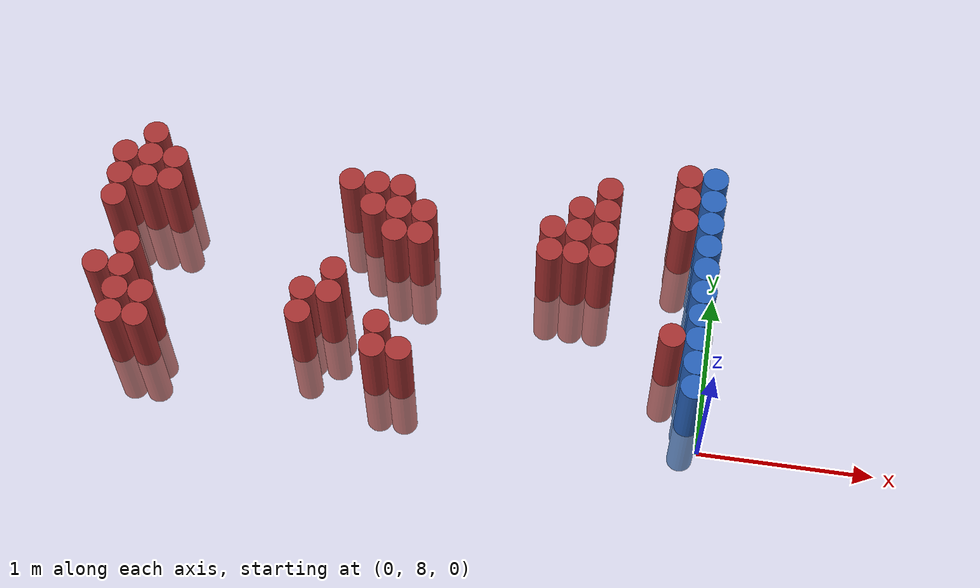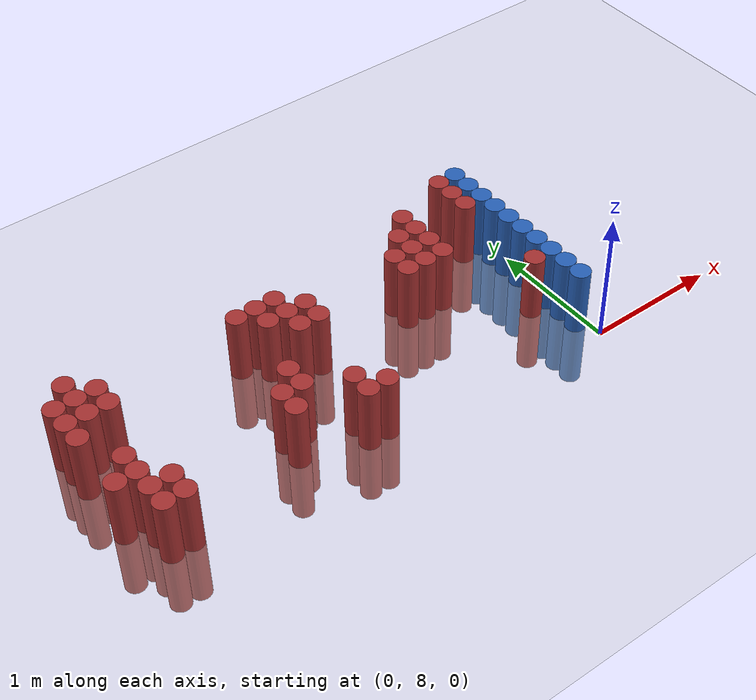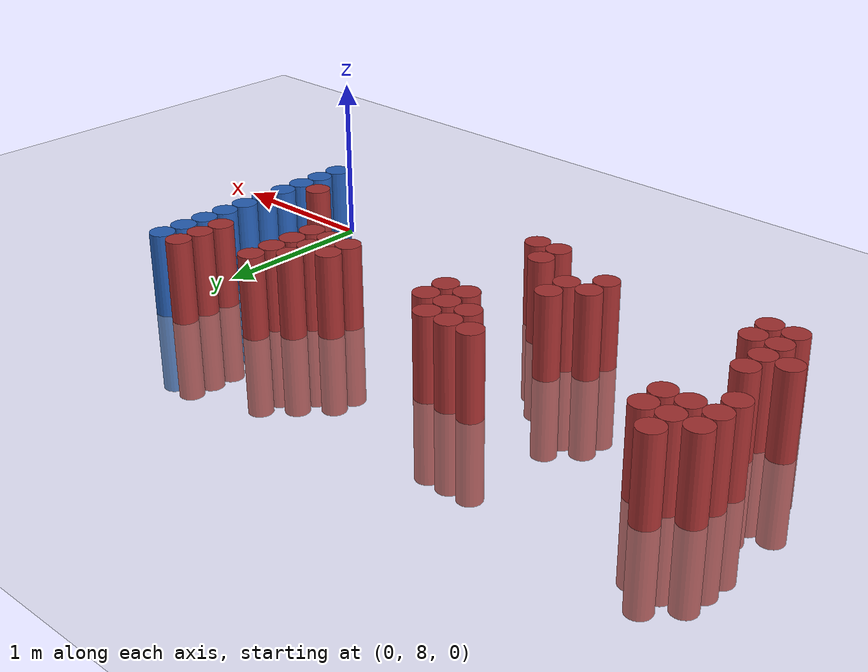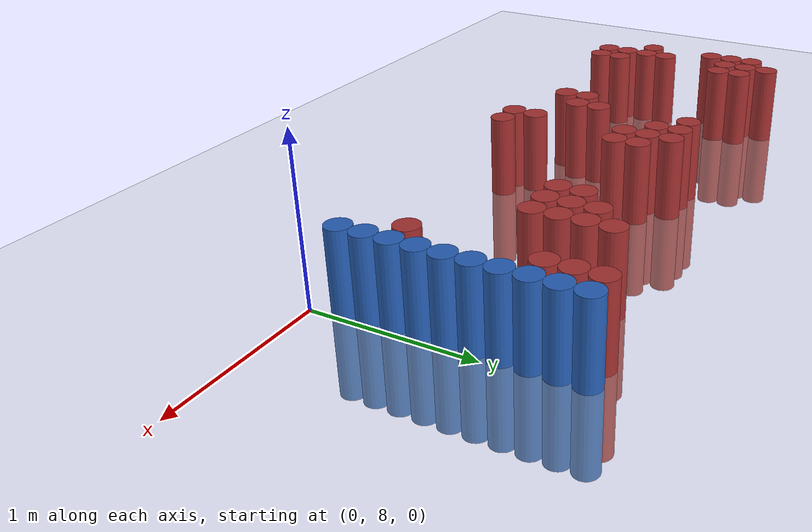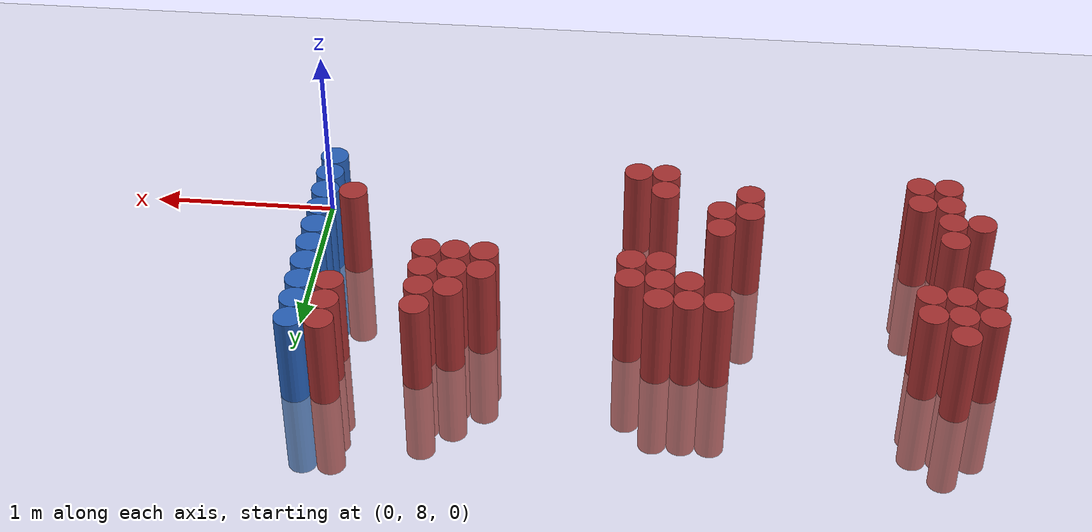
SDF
<sdf version="1.6">
 <world name="default">
  <model name="ground_plane">
   <static>1</static>
   <link name="link">
    <collision name="collision">
     <geometry><plane><normal>0 0 1</normal><size>100 100</size></plane></geometry>
     <surface><friction><ode><mu>100</mu><mu2>50</mu2></ode></friction></surface>
    </collision>
    <visual name="visual">
     <cast_shadows>0</cast_shadows>
     <geometry><plane><normal>0 0 1</normal><size>100 100</size></plane></geometry>
     <material>
      <script><uri>file://media/materials/scripts/gazebo.material</uri><name>Gazebo/Grey</name></script>
     </material>
    </visual>
   </link>
  </model>
  <model name="unit_cylinder_170">
   <static>1</static>
   <pose>-3.525000 8.475000 0.000000 0.000000 0.000000 0.000000</pose>
   <link name="link">
    <inertial>
     <mass>1</mass>
     <inertia><ixx>0.145833</ixx><ixy>0</ixy><ixz>0</ixz><iyy>0.145833</iyy><iyz>0</iyz><izz>0.125</izz></inertia>
    </inertial>
    <collision name="collision">
     <geometry><cylinder><radius>0.075000</radius><length>1</length></cylinder></geometry>
    </collision>
    <visual name="visual">
     <geometry><cylinder><radius>0.075000</radius><length>1</length></cylinder></geometry>
     <material>
      <ambient>0.648000 0.192000 0.192000 1</ambient>
      <diffuse>0.648000 0.192000 0.192000 1</diffuse>
     </material>
     <material>
      <script><name>Gazebo/Grey</name><uri>file://media/materials/scripts/gazebo.material</uri></script>
     </material>
    </visual>
   </link>
  </model>
  <model name="unit_cylinder_171">
   <static>1</static>
   <pose>-3.525000 8.925000 0.000000 0.000000 0.000000 0.000000</pose>
   <link name="link">
    <inertial>
     <mass>1</mass>
     <inertia><ixx>0.145833</ixx><ixy>0</ixy><ixz>0</ixz><iyy>0.145833</iyy><iyz>0</iyz><izz>0.125</izz></inertia>
    </inertial>
    <collision name="collision">
     <geometry><cylinder><radius>0.075000</radius><length>1</length></cylinder></geometry>
    </collision>
    <visual name="visual">
     <geometry><cylinder><radius>0.075000</radius><length>1</length></cylinder></geometry>
     <material>
      <ambient>0.648000 0.192000 0.192000 1</ambient>
      <diffuse>0.648000 0.192000 0.192000 1</diffuse>
     </material>
     <material>
      <script><name>Gazebo/Grey</name><uri>file://media/materials/scripts/gazebo.material</uri></script>
     </material>
    </visual>
   </link>
  </model>
  <model name="unit_cylinder_172">
   <static>1</static>
   <pose>-3.525000 9.075000 0.000000 0.000000 0.000000 0.000000</pose>
   <link name="link">
    <inertial>
     <mass>1</mass>
     <inertia><ixx>0.145833</ixx><ixy>0</ixy><ixz>0</ixz><iyy>0.145833</iyy><iyz>0</iyz><izz>0.125</izz></inertia>
    </inertial>
    <collision name="collision">
     <geometry><cylinder><radius>0.075000</radius><length>1</length></cylinder></geometry>
    </collision>
    <visual name="visual">
     <geometry><cylinder><radius>0.075000</radius><length>1</length></cylinder></geometry>
     <material>
      <ambient>0.648000 0.192000 0.192000 1</ambient>
      <diffuse>0.648000 0.192000 0.192000 1</diffuse>
     </material>
     <material>
      <script><name>Gazebo/Grey</name><uri>file://media/materials/scripts/gazebo.material</uri></script>
     </material>
    </visual>
   </link>
  </model>
  <model name="unit_cylinder_173">
   <static>1</static>
   <pose>-3.525000 9.225000 0.000000 0.000000 0.000000 0.000000</pose>
   <link name="link">
    <inertial>
     <mass>1</mass>
     <inertia><ixx>0.145833</ixx><ixy>0</ixy><ixz>0</ixz><iyy>0.145833</iyy><iyz>0</iyz><izz>0.125</izz></inertia>
    </inertial>
    <collision name="collision">
     <geometry><cylinder><radius>0.075000</radius><length>1</length></cylinder></geometry>
    </collision>
    <visual name="visual">
     <geometry><cylinder><radius>0.075000</radius><length>1</length></cylinder></geometry>
     <material>
      <ambient>0.648000 0.192000 0.192000 1</ambient>
      <diffuse>0.648000 0.192000 0.192000 1</diffuse>
     </material>
     <material>
      <script><name>Gazebo/Grey</name><uri>file://media/materials/scripts/gazebo.material</uri></script>
     </material>
    </visual>
   </link>
  </model>
  <model name="unit_cylinder_177">
   <static>1</static>
   <pose>-3.375000 8.175000 0.000000 0.000000 0.000000 0.000000</pose>
   <link name="link">
    <inertial>
     <mass>1</mass>
     <inertia><ixx>0.145833</ixx><ixy>0</ixy><ixz>0</ixz><iyy>0.145833</iyy><iyz>0</iyz><izz>0.125</izz></inertia>
    </inertial>
    <collision name="collision">
     <geometry><cylinder><radius>0.075000</radius><length>1</length></cylinder></geometry>
    </collision>
    <visual name="visual">
     <geometry><cylinder><radius>0.075000</radius><length>1</length></cylinder></geometry>
     <material>
      <ambient>0.648000 0.192000 0.192000 1</ambient>
      <diffuse>0.648000 0.192000 0.192000 1</diffuse>
     </material>
     <material>
      <script><name>Gazebo/Grey</name><uri>file://media/materials/scripts/gazebo.material</uri></script>
     </material>
    </visual>
   </link>
  </model>
  <model name="unit_cylinder_178">
   <static>1</static>
   <pose>-3.375000 8.325000 0.000000 0.000000 0.000000 0.000000</pose>
   <link name="link">
    <inertial>
     <mass>1</mass>
     <inertia><ixx>0.145833</ixx><ixy>0</ixy><ixz>0</ixz><iyy>0.145833</iyy><iyz>0</iyz><izz>0.125</izz></inertia>
    </inertial>
    <collision name="collision">
     <geometry><cylinder><radius>0.075000</radius><length>1</length></cylinder></geometry>
    </collision>
    <visual name="visual">
     <geometry><cylinder><radius>0.075000</radius><length>1</length></cylinder></geometry>
     <material>
      <ambient>0.648000 0.192000 0.192000 1</ambient>
      <diffuse>0.648000 0.192000 0.192000 1</diffuse>
     </material>
     <material>
      <script><name>Gazebo/Grey</name><uri>file://media/materials/scripts/gazebo.material</uri></script>
     </material>
    </visual>
   </link>
  </model>
  <model name="unit_cylinder_179">
   <static>1</static>
   <pose>-3.375000 8.475000 0.000000 0.000000 0.000000 0.000000</pose>
   <link name="link">
    <inertial>
     <mass>1</mass>
     <inertia><ixx>0.145833</ixx><ixy>0</ixy><ixz>0</ixz><iyy>0.145833</iyy><iyz>0</iyz><izz>0.125</izz></inertia>
    </inertial>
    <collision name="collision">
     <geometry><cylinder><radius>0.075000</radius><length>1</length></cylinder></geometry>
    </collision>
    <visual name="visual">
     <geometry><cylinder><radius>0.075000</radius><length>1</length></cylinder></geometry>
     <material>
      <ambient>0.648000 0.192000 0.192000 1</ambient>
      <diffuse>0.648000 0.192000 0.192000 1</diffuse>
     </material>
     <material>
      <script><name>Gazebo/Grey</name><uri>file://media/materials/scripts/gazebo.material</uri></script>
     </material>
    </visual>
   </link>
  </model>
  <model name="unit_cylinder_180">
   <static>1</static>
   <pose>-3.375000 8.625000 0.000000 0.000000 0.000000 0.000000</pose>
   <link name="link">
    <inertial>
     <mass>1</mass>
     <inertia><ixx>0.145833</ixx><ixy>0</ixy><ixz>0</ixz><iyy>0.145833</iyy><iyz>0</iyz><izz>0.125</izz></inertia>
    </inertial>
    <collision name="collision">
     <geometry><cylinder><radius>0.075000</radius><length>1</length></cylinder></geometry>
    </collision>
    <visual name="visual">
     <geometry><cylinder><radius>0.075000</radius><length>1</length></cylinder></geometry>
     <material>
      <ambient>0.648000 0.192000 0.192000 1</ambient>
      <diffuse>0.648000 0.192000 0.192000 1</diffuse>
     </material>
     <material>
      <script><name>Gazebo/Grey</name><uri>file://media/materials/scripts/gazebo.material</uri></script>
     </material>
    </visual>
   </link>
  </model>
  <model name="unit_cylinder_181">
   <static>1</static>
   <pose>-3.375000 9.075000 0.000000 0.000000 0.000000 0.000000</pose>
   <link name="link">
    <inertial>
     <mass>1</mass>
     <inertia><ixx>0.145833</ixx><ixy>0</ixy><ixz>0</ixz><iyy>0.145833</iyy><iyz>0</iyz><izz>0.125</izz></inertia>
    </inertial>
    <collision name="collision">
     <geometry><cylinder><radius>0.075000</radius><length>1</length></cylinder></geometry>
    </collision>
    <visual name="visual">
     <geometry><cylinder><radius>0.075000</radius><length>1</length></cylinder></geometry>
     <material>
      <ambient>0.648000 0.192000 0.192000 1</ambient>
      <diffuse>0.648000 0.192000 0.192000 1</diffuse>
     </material>
     <material>
      <script><name>Gazebo/Grey</name><uri>file://media/materials/scripts/gazebo.material</uri></script>
     </material>
    </visual>
   </link>
  </model>
  <model name="unit_cylinder_182">
   <static>1</static>
   <pose>-3.375000 9.225000 0.000000 0.000000 0.000000 0.000000</pose>
   <link name="link">
    <inertial>
     <mass>1</mass>
     <inertia><ixx>0.145833</ixx><ixy>0</ixy><ixz>0</ixz><iyy>0.145833</iyy><iyz>0</iyz><izz>0.125</izz></inertia>
    </inertial>
    <collision name="collision">
     <geometry><cylinder><radius>0.075000</radius><length>1</length></cylinder></geometry>
    </collision>
    <visual name="visual">
     <geometry><cylinder><radius>0.075000</radius><length>1</length></cylinder></geometry>
     <material>
      <ambient>0.648000 0.192000 0.192000 1</ambient>
      <diffuse>0.648000 0.192000 0.192000 1</diffuse>
     </material>
     <material>
      <script><name>Gazebo/Grey</name><uri>file://media/materials/scripts/gazebo.material</uri></script>
     </material>
    </visual>
   </link>
  </model>
  <model name="unit_cylinder_183">
   <static>1</static>
   <pose>-3.375000 9.375000 0.000000 0.000000 0.000000 0.000000</pose>
   <link name="link">
    <inertial>
     <mass>1</mass>
     <inertia><ixx>0.145833</ixx><ixy>0</ixy><ixz>0</ixz><iyy>0.145833</iyy><iyz>0</iyz><izz>0.125</izz></inertia>
    </inertial>
    <collision name="collision">
     <geometry><cylinder><radius>0.075000</radius><length>1</length></cylinder></geometry>
    </collision>
    <visual name="visual">
     <geometry><cylinder><radius>0.075000</radius><length>1</length></cylinder></geometry>
     <material>
      <ambient>0.648000 0.192000 0.192000 1</ambient>
      <diffuse>0.648000 0.192000 0.192000 1</diffuse>
     </material>
     <material>
      <script><name>Gazebo/Grey</name><uri>file://media/materials/scripts/gazebo.material</uri></script>
     </material>
    </visual>
   </link>
  </model>
  <model name="unit_cylinder_186">
   <static>1</static>
   <pose>-3.225000 8.175000 0.000000 0.000000 0.000000 0.000000</pose>
   <link name="link">
    <inertial>
     <mass>1</mass>
     <inertia><ixx>0.145833</ixx><ixy>0</ixy><ixz>0</ixz><iyy>0.145833</iyy><iyz>0</iyz><izz>0.125</izz></inertia>
    </inertial>
    <collision name="collision">
     <geometry><cylinder><radius>0.075000</radius><length>1</length></cylinder></geometry>
    </collision>
    <visual name="visual">
     <geometry><cylinder><radius>0.075000</radius><length>1</length></cylinder></geometry>
     <material>
      <ambient>0.648000 0.192000 0.192000 1</ambient>
      <diffuse>0.648000 0.192000 0.192000 1</diffuse>
     </material>
     <material>
      <script><name>Gazebo/Grey</name><uri>file://media/materials/scripts/gazebo.material</uri></script>
     </material>
    </visual>
   </link>
  </model>
  <model name="unit_cylinder_187">
   <static>1</static>
   <pose>-3.225000 8.325000 0.000000 0.000000 0.000000 0.000000</pose>
   <link name="link">
    <inertial>
     <mass>1</mass>
     <inertia><ixx>0.145833</ixx><ixy>0</ixy><ixz>0</ixz><iyy>0.145833</iyy><iyz>0</iyz><izz>0.125</izz></inertia>
    </inertial>
    <collision name="collision">
     <geometry><cylinder><radius>0.075000</radius><length>1</length></cylinder></geometry>
    </collision>
    <visual name="visual">
     <geometry><cylinder><radius>0.075000</radius><length>1</length></cylinder></geometry>
     <material>
      <ambient>0.648000 0.192000 0.192000 1</ambient>
      <diffuse>0.648000 0.192000 0.192000 1</diffuse>
     </material>
     <material>
      <script><name>Gazebo/Grey</name><uri>file://media/materials/scripts/gazebo.material</uri></script>
     </material>
    </visual>
   </link>
  </model>
  <model name="unit_cylinder_188">
   <static>1</static>
   <pose>-3.225000 9.075000 0.000000 0.000000 0.000000 0.000000</pose>
   <link name="link">
    <inertial>
     <mass>1</mass>
     <inertia><ixx>0.145833</ixx><ixy>0</ixy><ixz>0</ixz><iyy>0.145833</iyy><iyz>0</iyz><izz>0.125</izz></inertia>
    </inertial>
    <collision name="collision">
     <geometry><cylinder><radius>0.075000</radius><length>1</length></cylinder></geometry>
    </collision>
    <visual name="visual">
     <geometry><cylinder><radius>0.075000</radius><length>1</length></cylinder></geometry>
     <material>
      <ambient>0.648000 0.192000 0.192000 1</ambient>
      <diffuse>0.648000 0.192000 0.192000 1</diffuse>
     </material>
     <material>
      <script><name>Gazebo/Grey</name><uri>file://media/materials/scripts/gazebo.material</uri></script>
     </material>
    </visual>
   </link>
  </model>
  <model name="unit_cylinder_189">
   <static>1</static>
   <pose>-3.225000 9.225000 0.000000 0.000000 0.000000 0.000000</pose>
   <link name="link">
    <inertial>
     <mass>1</mass>
     <inertia><ixx>0.145833</ixx><ixy>0</ixy><ixz>0</ixz><iyy>0.145833</iyy><iyz>0</iyz><izz>0.125</izz></inertia>
    </inertial>
    <collision name="collision">
     <geometry><cylinder><radius>0.075000</radius><length>1</length></cylinder></geometry>
    </collision>
    <visual name="visual">
     <geometry><cylinder><radius>0.075000</radius><length>1</length></cylinder></geometry>
     <material>
      <ambient>0.648000 0.192000 0.192000 1</ambient>
      <diffuse>0.648000 0.192000 0.192000 1</diffuse>
     </material>
     <material>
      <script><name>Gazebo/Grey</name><uri>file://media/materials/scripts/gazebo.material</uri></script>
     </material>
    </visual>
   </link>
  </model>
  <model name="unit_cylinder_211">
   <static>1</static>
   <pose>-2.325000 8.325000 0.000000 0.000000 0.000000 0.000000</pose>
   <link name="link">
    <inertial>
     <mass>1</mass>
     <inertia><ixx>0.145833</ixx><ixy>0</ixy><ixz>0</ixz><iyy>0.145833</iyy><iyz>0</iyz><izz>0.125</izz></inertia>
    </inertial>
    <collision name="collision">
     <geometry><cylinder><radius>0.075000</radius><length>1</length></cylinder></geometry>
    </collision>
    <visual name="visual">
     <geometry><cylinder><radius>0.075000</radius><length>1</length></cylinder></geometry>
     <material>
      <ambient>0.648000 0.192000 0.192000 1</ambient>
      <diffuse>0.648000 0.192000 0.192000 1</diffuse>
     </material>
     <material>
      <script><name>Gazebo/Grey</name><uri>file://media/materials/scripts/gazebo.material</uri></script>
     </material>
    </visual>
   </link>
  </model>
  <model name="unit_cylinder_212">
   <static>1</static>
   <pose>-2.325000 8.475000 0.000000 0.000000 0.000000 0.000000</pose>
   <link name="link">
    <inertial>
     <mass>1</mass>
     <inertia><ixx>0.145833</ixx><ixy>0</ixy><ixz>0</ixz><iyy>0.145833</iyy><iyz>0</iyz><izz>0.125</izz></inertia>
    </inertial>
    <collision name="collision">
     <geometry><cylinder><radius>0.075000</radius><length>1</length></cylinder></geometry>
    </collision>
    <visual name="visual">
     <geometry><cylinder><radius>0.075000</radius><length>1</length></cylinder></geometry>
     <material>
      <ambient>0.648000 0.192000 0.192000 1</ambient>
      <diffuse>0.648000 0.192000 0.192000 1</diffuse>
     </material>
     <material>
      <script><name>Gazebo/Grey</name><uri>file://media/materials/scripts/gazebo.material</uri></script>
     </material>
    </visual>
   </link>
  </model>
  <model name="unit_cylinder_215">
   <static>1</static>
   <pose>-2.175000 8.475000 0.000000 0.000000 0.000000 0.000000</pose>
   <link name="link">
    <inertial>
     <mass>1</mass>
     <inertia><ixx>0.145833</ixx><ixy>0</ixy><ixz>0</ixz><iyy>0.145833</iyy><iyz>0</iyz><izz>0.125</izz></inertia>
    </inertial>
    <collision name="collision">
     <geometry><cylinder><radius>0.075000</radius><length>1</length></cylinder></geometry>
    </collision>
    <visual name="visual">
     <geometry><cylinder><radius>0.075000</radius><length>1</length></cylinder></geometry>
     <material>
      <ambient>0.648000 0.192000 0.192000 1</ambient>
      <diffuse>0.648000 0.192000 0.192000 1</diffuse>
     </material>
     <material>
      <script><name>Gazebo/Grey</name><uri>file://media/materials/scripts/gazebo.material</uri></script>
     </material>
    </visual>
   </link>
  </model>
  <model name="unit_cylinder_216">
   <static>1</static>
   <pose>-2.175000 8.625000 0.000000 0.000000 0.000000 0.000000</pose>
   <link name="link">
    <inertial>
     <mass>1</mass>
     <inertia><ixx>0.145833</ixx><ixy>0</ixy><ixz>0</ixz><iyy>0.145833</iyy><iyz>0</iyz><izz>0.125</izz></inertia>
    </inertial>
    <collision name="collision">
     <geometry><cylinder><radius>0.075000</radius><length>1</length></cylinder></geometry>
    </collision>
    <visual name="visual">
     <geometry><cylinder><radius>0.075000</radius><length>1</length></cylinder></geometry>
     <material>
      <ambient>0.648000 0.192000 0.192000 1</ambient>
      <diffuse>0.648000 0.192000 0.192000 1</diffuse>
     </material>
     <material>
      <script><name>Gazebo/Grey</name><uri>file://media/materials/scripts/gazebo.material</uri></script>
     </material>
    </visual>
   </link>
  </model>
  <model name="unit_cylinder_217">
   <static>1</static>
   <pose>-2.175000 9.225000 0.000000 0.000000 0.000000 0.000000</pose>
   <link name="link">
    <inertial>
     <mass>1</mass>
     <inertia><ixx>0.145833</ixx><ixy>0</ixy><ixz>0</ixz><iyy>0.145833</iyy><iyz>0</iyz><izz>0.125</izz></inertia>
    </inertial>
    <collision name="collision">
     <geometry><cylinder><radius>0.075000</radius><length>1</length></cylinder></geometry>
    </collision>
    <visual name="visual">
     <geometry><cylinder><radius>0.075000</radius><length>1</length></cylinder></geometry>
     <material>
      <ambient>0.648000 0.192000 0.192000 1</ambient>
      <diffuse>0.648000 0.192000 0.192000 1</diffuse>
     </material>
     <material>
      <script><name>Gazebo/Grey</name><uri>file://media/materials/scripts/gazebo.material</uri></script>
     </material>
    </visual>
   </link>
  </model>
  <model name="unit_cylinder_220">
   <static>1</static>
   <pose>-2.025000 9.075000 0.000000 0.000000 0.000000 0.000000</pose>
   <link name="link">
    <inertial>
     <mass>1</mass>
     <inertia><ixx>0.145833</ixx><ixy>0</ixy><ixz>0</ixz><iyy>0.145833</iyy><iyz>0</iyz><izz>0.125</izz></inertia>
    </inertial>
    <collision name="collision">
     <geometry><cylinder><radius>0.075000</radius><length>1</length></cylinder></geometry>
    </collision>
    <visual name="visual">
     <geometry><cylinder><radius>0.075000</radius><length>1</length></cylinder></geometry>
     <material>
      <ambient>0.648000 0.192000 0.192000 1</ambient>
      <diffuse>0.648000 0.192000 0.192000 1</diffuse>
     </material>
     <material>
      <script><name>Gazebo/Grey</name><uri>file://media/materials/scripts/gazebo.material</uri></script>
     </material>
    </visual>
   </link>
  </model>
  <model name="unit_cylinder_221">
   <static>1</static>
   <pose>-2.025000 9.225000 0.000000 0.000000 0.000000 0.000000</pose>
   <link name="link">
    <inertial>
     <mass>1</mass>
     <inertia><ixx>0.145833</ixx><ixy>0</ixy><ixz>0</ixz><iyy>0.145833</iyy><iyz>0</iyz><izz>0.125</izz></inertia>
    </inertial>
    <collision name="collision">
     <geometry><cylinder><radius>0.075000</radius><length>1</length></cylinder></geometry>
    </collision>
    <visual name="visual">
     <geometry><cylinder><radius>0.075000</radius><length>1</length></cylinder></geometry>
     <material>
      <ambient>0.648000 0.192000 0.192000 1</ambient>
      <diffuse>0.648000 0.192000 0.192000 1</diffuse>
     </material>
     <material>
      <script><name>Gazebo/Grey</name><uri>file://media/materials/scripts/gazebo.material</uri></script>
     </material>
    </visual>
   </link>
  </model>
  <model name="unit_cylinder_223">
   <static>1</static>
   <pose>-1.875000 8.175000 0.000000 0.000000 0.000000 0.000000</pose>
   <link name="link">
    <inertial>
     <mass>1</mass>
     <inertia><ixx>0.145833</ixx><ixy>0</ixy><ixz>0</ixz><iyy>0.145833</iyy><iyz>0</iyz><izz>0.125</izz></inertia>
    </inertial>
    <collision name="collision">
     <geometry><cylinder><radius>0.075000</radius><length>1</length></cylinder></geometry>
    </collision>
    <visual name="visual">
     <geometry><cylinder><radius>0.075000</radius><length>1</length></cylinder></geometry>
     <material>
      <ambient>0.648000 0.192000 0.192000 1</ambient>
      <diffuse>0.648000 0.192000 0.192000 1</diffuse>
     </material>
     <material>
      <script><name>Gazebo/Grey</name><uri>file://media/materials/scripts/gazebo.material</uri></script>
     </material>
    </visual>
   </link>
  </model>
  <model name="unit_cylinder_224">
   <static>1</static>
   <pose>-1.875000 8.325000 0.000000 0.000000 0.000000 0.000000</pose>
   <link name="link">
    <inertial>
     <mass>1</mass>
     <inertia><ixx>0.145833</ixx><ixy>0</ixy><ixz>0</ixz><iyy>0.145833</iyy><iyz>0</iyz><izz>0.125</izz></inertia>
    </inertial>
    <collision name="collision">
     <geometry><cylinder><radius>0.075000</radius><length>1</length></cylinder></geometry>
    </collision>
    <visual name="visual">
     <geometry><cylinder><radius>0.075000</radius><length>1</length></cylinder></geometry>
     <material>
      <ambient>0.648000 0.192000 0.192000 1</ambient>
      <diffuse>0.648000 0.192000 0.192000 1</diffuse>
     </material>
     <material>
      <script><name>Gazebo/Grey</name><uri>file://media/materials/scripts/gazebo.material</uri></script>
     </material>
    </visual>
   </link>
  </model>
  <model name="unit_cylinder_225">
   <static>1</static>
   <pose>-1.875000 8.925000 0.000000 0.000000 0.000000 0.000000</pose>
   <link name="link">
    <inertial>
     <mass>1</mass>
     <inertia><ixx>0.145833</ixx><ixy>0</ixy><ixz>0</ixz><iyy>0.145833</iyy><iyz>0</iyz><izz>0.125</izz></inertia>
    </inertial>
    <collision name="collision">
     <geometry><cylinder><radius>0.075000</radius><length>1</length></cylinder></geometry>
    </collision>
    <visual name="visual">
     <geometry><cylinder><radius>0.075000</radius><length>1</length></cylinder></geometry>
     <material>
      <ambient>0.648000 0.192000 0.192000 1</ambient>
      <diffuse>0.648000 0.192000 0.192000 1</diffuse>
     </material>
     <material>
      <script><name>Gazebo/Grey</name><uri>file://media/materials/scripts/gazebo.material</uri></script>
     </material>
    </visual>
   </link>
  </model>
  <model name="unit_cylinder_226">
   <static>1</static>
   <pose>-1.875000 9.075000 0.000000 0.000000 0.000000 0.000000</pose>
   <link name="link">
    <inertial>
     <mass>1</mass>
     <inertia><ixx>0.145833</ixx><ixy>0</ixy><ixz>0</ixz><iyy>0.145833</iyy><iyz>0</iyz><izz>0.125</izz></inertia>
    </inertial>
    <collision name="collision">
     <geometry><cylinder><radius>0.075000</radius><length>1</length></cylinder></geometry>
    </collision>
    <visual name="visual">
     <geometry><cylinder><radius>0.075000</radius><length>1</length></cylinder></geometry>
     <material>
      <ambient>0.648000 0.192000 0.192000 1</ambient>
      <diffuse>0.648000 0.192000 0.192000 1</diffuse>
     </material>
     <material>
      <script><name>Gazebo/Grey</name><uri>file://media/materials/scripts/gazebo.material</uri></script>
     </material>
    </visual>
   </link>
  </model>
  <model name="unit_cylinder_227">
   <static>1</static>
   <pose>-1.875000 9.225000 0.000000 0.000000 0.000000 0.000000</pose>
   <link name="link">
    <inertial>
     <mass>1</mass>
     <inertia><ixx>0.145833</ixx><ixy>0</ixy><ixz>0</ixz><iyy>0.145833</iyy><iyz>0</iyz><izz>0.125</izz></inertia>
    </inertial>
    <collision name="collision">
     <geometry><cylinder><radius>0.075000</radius><length>1</length></cylinder></geometry>
    </collision>
    <visual name="visual">
     <geometry><cylinder><radius>0.075000</radius><length>1</length></cylinder></geometry>
     <material>
      <ambient>0.648000 0.192000 0.192000 1</ambient>
      <diffuse>0.648000 0.192000 0.192000 1</diffuse>
     </material>
     <material>
      <script><name>Gazebo/Grey</name><uri>file://media/materials/scripts/gazebo.material</uri></script>
     </material>
    </visual>
   </link>
  </model>
  <model name="unit_cylinder_228">
   <static>1</static>
   <pose>-1.725000 8.175000 0.000000 0.000000 0.000000 0.000000</pose>
   <link name="link">
    <inertial>
     <mass>1</mass>
     <inertia><ixx>0.145833</ixx><ixy>0</ixy><ixz>0</ixz><iyy>0.145833</iyy><iyz>0</iyz><izz>0.125</izz></inertia>
    </inertial>
    <collision name="collision">
     <geometry><cylinder><radius>0.075000</radius><length>1</length></cylinder></geometry>
    </collision>
    <visual name="visual">
     <geometry><cylinder><radius>0.075000</radius><length>1</length></cylinder></geometry>
     <material>
      <ambient>0.648000 0.192000 0.192000 1</ambient>
      <diffuse>0.648000 0.192000 0.192000 1</diffuse>
     </material>
     <material>
      <script><name>Gazebo/Grey</name><uri>file://media/materials/scripts/gazebo.material</uri></script>
     </material>
    </visual>
   </link>
  </model>
  <model name="unit_cylinder_229">
   <static>1</static>
   <pose>-1.725000 8.925000 0.000000 0.000000 0.000000 0.000000</pose>
   <link name="link">
    <inertial>
     <mass>1</mass>
     <inertia><ixx>0.145833</ixx><ixy>0</ixy><ixz>0</ixz><iyy>0.145833</iyy><iyz>0</iyz><izz>0.125</izz></inertia>
    </inertial>
    <collision name="collision">
     <geometry><cylinder><radius>0.075000</radius><length>1</length></cylinder></geometry>
    </collision>
    <visual name="visual">
     <geometry><cylinder><radius>0.075000</radius><length>1</length></cylinder></geometry>
     <material>
      <ambient>0.648000 0.192000 0.192000 1</ambient>
      <diffuse>0.648000 0.192000 0.192000 1</diffuse>
     </material>
     <material>
      <script><name>Gazebo/Grey</name><uri>file://media/materials/scripts/gazebo.material</uri></script>
     </material>
    </visual>
   </link>
  </model>
  <model name="unit_cylinder_230">
   <static>1</static>
   <pose>-1.725000 9.075000 0.000000 0.000000 0.000000 0.000000</pose>
   <link name="link">
    <inertial>
     <mass>1</mass>
     <inertia><ixx>0.145833</ixx><ixy>0</ixy><ixz>0</ixz><iyy>0.145833</iyy><iyz>0</iyz><izz>0.125</izz></inertia>
    </inertial>
    <collision name="collision">
     <geometry><cylinder><radius>0.075000</radius><length>1</length></cylinder></geometry>
    </collision>
    <visual name="visual">
     <geometry><cylinder><radius>0.075000</radius><length>1</length></cylinder></geometry>
     <material>
      <ambient>0.648000 0.192000 0.192000 1</ambient>
      <diffuse>0.648000 0.192000 0.192000 1</diffuse>
     </material>
     <material>
      <script><name>Gazebo/Grey</name><uri>file://media/materials/scripts/gazebo.material</uri></script>
     </material>
    </visual>
   </link>
  </model>
  <model name="unit_cylinder_241">
   <static>1</static>
   <pose>-0.975000 8.925000 0.000000 0.000000 0.000000 0.000000</pose>
   <link name="link">
    <inertial>
     <mass>1</mass>
     <inertia><ixx>0.145833</ixx><ixy>0</ixy><ixz>0</ixz><iyy>0.145833</iyy><iyz>0</iyz><izz>0.125</izz></inertia>
    </inertial>
    <collision name="collision">
     <geometry><cylinder><radius>0.075000</radius><length>1</length></cylinder></geometry>
    </collision>
    <visual name="visual">
     <geometry><cylinder><radius>0.075000</radius><length>1</length></cylinder></geometry>
     <material>
      <ambient>0.648000 0.192000 0.192000 1</ambient>
      <diffuse>0.648000 0.192000 0.192000 1</diffuse>
     </material>
     <material>
      <script><name>Gazebo/Grey</name><uri>file://media/materials/scripts/gazebo.material</uri></script>
     </material>
    </visual>
   </link>
  </model>
  <model name="unit_cylinder_242">
   <static>1</static>
   <pose>-0.975000 9.075000 0.000000 0.000000 0.000000 0.000000</pose>
   <link name="link">
    <inertial>
     <mass>1</mass>
     <inertia><ixx>0.145833</ixx><ixy>0</ixy><ixz>0</ixz><iyy>0.145833</iyy><iyz>0</iyz><izz>0.125</izz></inertia>
    </inertial>
    <collision name="collision">
     <geometry><cylinder><radius>0.075000</radius><length>1</length></cylinder></geometry>
    </collision>
    <visual name="visual">
     <geometry><cylinder><radius>0.075000</radius><length>1</length></cylinder></geometry>
     <material>
      <ambient>0.648000 0.192000 0.192000 1</ambient>
      <diffuse>0.648000 0.192000 0.192000 1</diffuse>
     </material>
     <material>
      <script><name>Gazebo/Grey</name><uri>file://media/materials/scripts/gazebo.material</uri></script>
     </material>
    </visual>
   </link>
  </model>
  <model name="unit_cylinder_247">
   <static>1</static>
   <pose>-0.825000 8.925000 0.000000 0.000000 0.000000 0.000000</pose>
   <link name="link">
    <inertial>
     <mass>1</mass>
     <inertia><ixx>0.145833</ixx><ixy>0</ixy><ixz>0</ixz><iyy>0.145833</iyy><iyz>0</iyz><izz>0.125</izz></inertia>
    </inertial>
    <collision name="collision">
     <geometry><cylinder><radius>0.075000</radius><length>1</length></cylinder></geometry>
    </collision>
    <visual name="visual">
     <geometry><cylinder><radius>0.075000</radius><length>1</length></cylinder></geometry>
     <material>
      <ambient>0.648000 0.192000 0.192000 1</ambient>
      <diffuse>0.648000 0.192000 0.192000 1</diffuse>
     </material>
     <material>
      <script><name>Gazebo/Grey</name><uri>file://media/materials/scripts/gazebo.material</uri></script>
     </material>
    </visual>
   </link>
  </model>
  <model name="unit_cylinder_248">
   <static>1</static>
   <pose>-0.825000 9.075000 0.000000 0.000000 0.000000 0.000000</pose>
   <link name="link">
    <inertial>
     <mass>1</mass>
     <inertia><ixx>0.145833</ixx><ixy>0</ixy><ixz>0</ixz><iyy>0.145833</iyy><iyz>0</iyz><izz>0.125</izz></inertia>
    </inertial>
    <collision name="collision">
     <geometry><cylinder><radius>0.075000</radius><length>1</length></cylinder></geometry>
    </collision>
    <visual name="visual">
     <geometry><cylinder><radius>0.075000</radius><length>1</length></cylinder></geometry>
     <material>
      <ambient>0.648000 0.192000 0.192000 1</ambient>
      <diffuse>0.648000 0.192000 0.192000 1</diffuse>
     </material>
     <material>
      <script><name>Gazebo/Grey</name><uri>file://media/materials/scripts/gazebo.material</uri></script>
     </material>
    </visual>
   </link>
  </model>
  <model name="unit_cylinder_249">
   <static>1</static>
   <pose>-0.825000 9.225000 0.000000 0.000000 0.000000 0.000000</pose>
   <link name="link">
    <inertial>
     <mass>1</mass>
     <inertia><ixx>0.145833</ixx><ixy>0</ixy><ixz>0</ixz><iyy>0.145833</iyy><iyz>0</iyz><izz>0.125</izz></inertia>
    </inertial>
    <collision name="collision">
     <geometry><cylinder><radius>0.075000</radius><length>1</length></cylinder></geometry>
    </collision>
    <visual name="visual">
     <geometry><cylinder><radius>0.075000</radius><length>1</length></cylinder></geometry>
     <material>
      <ambient>0.648000 0.192000 0.192000 1</ambient>
      <diffuse>0.648000 0.192000 0.192000 1</diffuse>
     </material>
     <material>
      <script><name>Gazebo/Grey</name><uri>file://media/materials/scripts/gazebo.material</uri></script>
     </material>
    </visual>
   </link>
  </model>
  <model name="unit_cylinder_257">
   <static>1</static>
   <pose>-0.675000 8.925000 0.000000 0.000000 0.000000 0.000000</pose>
   <link name="link">
    <inertial>
     <mass>1</mass>
     <inertia><ixx>0.145833</ixx><ixy>0</ixy><ixz>0</ixz><iyy>0.145833</iyy><iyz>0</iyz><izz>0.125</izz></inertia>
    </inertial>
    <collision name="collision">
     <geometry><cylinder><radius>0.075000</radius><length>1</length></cylinder></geometry>
    </collision>
    <visual name="visual">
     <geometry><cylinder><radius>0.075000</radius><length>1</length></cylinder></geometry>
     <material>
      <ambient>0.648000 0.192000 0.192000 1</ambient>
      <diffuse>0.648000 0.192000 0.192000 1</diffuse>
     </material>
     <material>
      <script><name>Gazebo/Grey</name><uri>file://media/materials/scripts/gazebo.material</uri></script>
     </material>
    </visual>
   </link>
  </model>
  <model name="unit_cylinder_258">
   <static>1</static>
   <pose>-0.675000 9.075000 0.000000 0.000000 0.000000 0.000000</pose>
   <link name="link">
    <inertial>
     <mass>1</mass>
     <inertia><ixx>0.145833</ixx><ixy>0</ixy><ixz>0</ixz><iyy>0.145833</iyy><iyz>0</iyz><izz>0.125</izz></inertia>
    </inertial>
    <collision name="collision">
     <geometry><cylinder><radius>0.075000</radius><length>1</length></cylinder></geometry>
    </collision>
    <visual name="visual">
     <geometry><cylinder><radius>0.075000</radius><length>1</length></cylinder></geometry>
     <material>
      <ambient>0.648000 0.192000 0.192000 1</ambient>
      <diffuse>0.648000 0.192000 0.192000 1</diffuse>
     </material>
     <material>
      <script><name>Gazebo/Grey</name><uri>file://media/materials/scripts/gazebo.material</uri></script>
     </material>
    </visual>
   </link>
  </model>
  <model name="unit_cylinder_259">
   <static>1</static>
   <pose>-0.675000 9.225000 0.000000 0.000000 0.000000 0.000000</pose>
   <link name="link">
    <inertial>
     <mass>1</mass>
     <inertia><ixx>0.145833</ixx><ixy>0</ixy><ixz>0</ixz><iyy>0.145833</iyy><iyz>0</iyz><izz>0.125</izz></inertia>
    </inertial>
    <collision name="collision">
     <geometry><cylinder><radius>0.075000</radius><length>1</length></cylinder></geometry>
    </collision>
    <visual name="visual">
     <geometry><cylinder><radius>0.075000</radius><length>1</length></cylinder></geometry>
     <material>
      <ambient>0.648000 0.192000 0.192000 1</ambient>
      <diffuse>0.648000 0.192000 0.192000 1</diffuse>
     </material>
     <material>
      <script><name>Gazebo/Grey</name><uri>file://media/materials/scripts/gazebo.material</uri></script>
     </material>
    </visual>
   </link>
  </model>
  <model name="unit_cylinder_260">
   <static>1</static>
   <pose>-0.675000 9.375000 0.000000 0.000000 0.000000 0.000000</pose>
   <link name="link">
    <inertial>
     <mass>1</mass>
     <inertia><ixx>0.145833</ixx><ixy>0</ixy><ixz>0</ixz><iyy>0.145833</iyy><iyz>0</iyz><izz>0.125</izz></inertia>
    </inertial>
    <collision name="collision">
     <geometry><cylinder><radius>0.075000</radius><length>1</length></cylinder></geometry>
    </collision>
    <visual name="visual">
     <geometry><cylinder><radius>0.075000</radius><length>1</length></cylinder></geometry>
     <material>
      <ambient>0.648000 0.192000 0.192000 1</ambient>
      <diffuse>0.648000 0.192000 0.192000 1</diffuse>
     </material>
     <material>
      <script><name>Gazebo/Grey</name><uri>file://media/materials/scripts/gazebo.material</uri></script>
     </material>
    </visual>
   </link>
  </model>
  <model name="unit_cylinder_280">
   <static>1</static>
   <pose>-0.225000 8.475000 0.000000 0.000000 0.000000 0.000000</pose>
   <link name="link">
    <inertial>
     <mass>1</mass>
     <inertia><ixx>0.145833</ixx><ixy>0</ixy><ixz>0</ixz><iyy>0.145833</iyy><iyz>0</iyz><izz>0.125</izz></inertia>
    </inertial>
    <collision name="collision">
     <geometry><cylinder><radius>0.075000</radius><length>1</length></cylinder></geometry>
    </collision>
    <visual name="visual">
     <geometry><cylinder><radius>0.075000</radius><length>1</length></cylinder></geometry>
     <material>
      <ambient>0.648000 0.192000 0.192000 1</ambient>
      <diffuse>0.648000 0.192000 0.192000 1</diffuse>
     </material>
     <material>
      <script><name>Gazebo/Grey</name><uri>file://media/materials/scripts/gazebo.material</uri></script>
     </material>
    </visual>
   </link>
  </model>
  <model name="unit_cylinder_281">
   <static>1</static>
   <pose>-0.225000 9.225000 0.000000 0.000000 0.000000 0.000000</pose>
   <link name="link">
    <inertial>
     <mass>1</mass>
     <inertia><ixx>0.145833</ixx><ixy>0</ixy><ixz>0</ixz><iyy>0.145833</iyy><iyz>0</iyz><izz>0.125</izz></inertia>
    </inertial>
    <collision name="collision">
     <geometry><cylinder><radius>0.075000</radius><length>1</length></cylinder></geometry>
    </collision>
    <visual name="visual">
     <geometry><cylinder><radius>0.075000</radius><length>1</length></cylinder></geometry>
     <material>
      <ambient>0.648000 0.192000 0.192000 1</ambient>
      <diffuse>0.648000 0.192000 0.192000 1</diffuse>
     </material>
     <material>
      <script><name>Gazebo/Grey</name><uri>file://media/materials/scripts/gazebo.material</uri></script>
     </material>
    </visual>
   </link>
  </model>
  <model name="unit_cylinder_282">
   <static>1</static>
   <pose>-0.225000 9.375000 0.000000 0.000000 0.000000 0.000000</pose>
   <link name="link">
    <inertial>
     <mass>1</mass>
     <inertia><ixx>0.145833</ixx><ixy>0</ixy><ixz>0</ixz><iyy>0.145833</iyy><iyz>0</iyz><izz>0.125</izz></inertia>
    </inertial>
    <collision name="collision">
     <geometry><cylinder><radius>0.075000</radius><length>1</length></cylinder></geometry>
    </collision>
    <visual name="visual">
     <geometry><cylinder><radius>0.075000</radius><length>1</length></cylinder></geometry>
     <material>
      <ambient>0.648000 0.192000 0.192000 1</ambient>
      <diffuse>0.648000 0.192000 0.192000 1</diffuse>
     </material>
     <material>
      <script><name>Gazebo/Grey</name><uri>file://media/materials/scripts/gazebo.material</uri></script>
     </material>
    </visual>
   </link>
  </model>
  <model name="unit_cylinder_283">
   <static>1</static>
   <pose>-0.225000 9.525000 0.000000 0.000000 0.000000 0.000000</pose>
   <link name="link">
    <inertial>
     <mass>1</mass>
     <inertia><ixx>0.145833</ixx><ixy>0</ixy><ixz>0</ixz><iyy>0.145833</iyy><iyz>0</iyz><izz>0.125</izz></inertia>
    </inertial>
    <collision name="collision">
     <geometry><cylinder><radius>0.075000</radius><length>1</length></cylinder></geometry>
    </collision>
    <visual name="visual">
     <geometry><cylinder><radius>0.075000</radius><length>1</length></cylinder></geometry>
     <material>
      <ambient>0.648000 0.192000 0.192000 1</ambient>
      <diffuse>0.648000 0.192000 0.192000 1</diffuse>
     </material>
     <material>
      <script><name>Gazebo/Grey</name><uri>file://media/materials/scripts/gazebo.material</uri></script>
     </material>
    </visual>
   </link>
  </model>
  <model name="unit_cylinder_304">
   <static>1</static>
   <pose>-0.075000 8.175000 0.000000 0.000000 0.000000 0.000000</pose>
   <link name="link">
    <inertial>
     <mass>1</mass>
     <inertia><ixx>0.145833</ixx><ixy>0</ixy><ixz>0</ixz><iyy>0.145833</iyy><iyz>0</iyz><izz>0.125</izz></inertia>
    </inertial>
    <collision name="collision">
     <geometry><cylinder><radius>0.075000</radius><length>1</length></cylinder></geometry>
    </collision>
    <visual name="visual">
     <geometry><cylinder><radius>0.075000</radius><length>1</length></cylinder></geometry>
     <material>
      <ambient>0.152000 0.379000 0.720000 1</ambient>
      <diffuse>0.152000 0.379000 0.720000 1</diffuse>
     </material>
     <material>
      <script><name>Gazebo/Grey</name><uri>file://media/materials/scripts/gazebo.material</uri></script>
     </material>
    </visual>
   </link>
  </model>
  <model name="unit_cylinder_305">
   <static>1</static>
   <pose>-0.075000 8.325000 0.000000 0.000000 0.000000 0.000000</pose>
   <link name="link">
    <inertial>
     <mass>1</mass>
     <inertia><ixx>0.145833</ixx><ixy>0</ixy><ixz>0</ixz><iyy>0.145833</iyy><iyz>0</iyz><izz>0.125</izz></inertia>
    </inertial>
    <collision name="collision">
     <geometry><cylinder><radius>0.075000</radius><length>1</length></cylinder></geometry>
    </collision>
    <visual name="visual">
     <geometry><cylinder><radius>0.075000</radius><length>1</length></cylinder></geometry>
     <material>
      <ambient>0.152000 0.379000 0.720000 1</ambient>
      <diffuse>0.152000 0.379000 0.720000 1</diffuse>
     </material>
     <material>
      <script><name>Gazebo/Grey</name><uri>file://media/materials/scripts/gazebo.material</uri></script>
     </material>
    </visual>
   </link>
  </model>
  <model name="unit_cylinder_306">
   <static>1</static>
   <pose>-0.075000 8.475000 0.000000 0.000000 0.000000 0.000000</pose>
   <link name="link">
    <inertial>
     <mass>1</mass>
     <inertia><ixx>0.145833</ixx><ixy>0</ixy><ixz>0</ixz><iyy>0.145833</iyy><iyz>0</iyz><izz>0.125</izz></inertia>
    </inertial>
    <collision name="collision">
     <geometry><cylinder><radius>0.075000</radius><length>1</length></cylinder></geometry>
    </collision>
    <visual name="visual">
     <geometry><cylinder><radius>0.075000</radius><length>1</length></cylinder></geometry>
     <material>
      <ambient>0.152000 0.379000 0.720000 1</ambient>
      <diffuse>0.152000 0.379000 0.720000 1</diffuse>
     </material>
     <material>
      <script><name>Gazebo/Grey</name><uri>file://media/materials/scripts/gazebo.material</uri></script>
     </material>
    </visual>
   </link>
  </model>
  <model name="unit_cylinder_307">
   <static>1</static>
   <pose>-0.075000 8.625000 0.000000 0.000000 0.000000 0.000000</pose>
   <link name="link">
    <inertial>
     <mass>1</mass>
     <inertia><ixx>0.145833</ixx><ixy>0</ixy><ixz>0</ixz><iyy>0.145833</iyy><iyz>0</iyz><izz>0.125</izz></inertia>
    </inertial>
    <collision name="collision">
     <geometry><cylinder><radius>0.075000</radius><length>1</length></cylinder></geometry>
    </collision>
    <visual name="visual">
     <geometry><cylinder><radius>0.075000</radius><length>1</length></cylinder></geometry>
     <material>
      <ambient>0.152000 0.379000 0.720000 1</ambient>
      <diffuse>0.152000 0.379000 0.720000 1</diffuse>
     </material>
     <material>
      <script><name>Gazebo/Grey</name><uri>file://media/materials/scripts/gazebo.material</uri></script>
     </material>
    </visual>
   </link>
  </model>
  <model name="unit_cylinder_308">
   <static>1</static>
   <pose>-0.075000 8.775000 0.000000 0.000000 0.000000 0.000000</pose>
   <link name="link">
    <inertial>
     <mass>1</mass>
     <inertia><ixx>0.145833</ixx><ixy>0</ixy><ixz>0</ixz><iyy>0.145833</iyy><iyz>0</iyz><izz>0.125</izz></inertia>
    </inertial>
    <collision name="collision">
     <geometry><cylinder><radius>0.075000</radius><length>1</length></cylinder></geometry>
    </collision>
    <visual name="visual">
     <geometry><cylinder><radius>0.075000</radius><length>1</length></cylinder></geometry>
     <material>
      <ambient>0.152000 0.379000 0.720000 1</ambient>
      <diffuse>0.152000 0.379000 0.720000 1</diffuse>
     </material>
     <material>
      <script><name>Gazebo/Grey</name><uri>file://media/materials/scripts/gazebo.material</uri></script>
     </material>
    </visual>
   </link>
  </model>
  <model name="unit_cylinder_309">
   <static>1</static>
   <pose>-0.075000 8.925000 0.000000 0.000000 0.000000 0.000000</pose>
   <link name="link">
    <inertial>
     <mass>1</mass>
     <inertia><ixx>0.145833</ixx><ixy>0</ixy><ixz>0</ixz><iyy>0.145833</iyy><iyz>0</iyz><izz>0.125</izz></inertia>
    </inertial>
    <collision name="collision">
     <geometry><cylinder><radius>0.075000</radius><length>1</length></cylinder></geometry>
    </collision>
    <visual name="visual">
     <geometry><cylinder><radius>0.075000</radius><length>1</length></cylinder></geometry>
     <material>
      <ambient>0.152000 0.379000 0.720000 1</ambient>
      <diffuse>0.152000 0.379000 0.720000 1</diffuse>
     </material>
     <material>
      <script><name>Gazebo/Grey</name><uri>file://media/materials/scripts/gazebo.material</uri></script>
     </material>
    </visual>
   </link>
  </model>
  <model name="unit_cylinder_310">
   <static>1</static>
   <pose>-0.075000 9.075000 0.000000 0.000000 0.000000 0.000000</pose>
   <link name="link">
    <inertial>
     <mass>1</mass>
     <inertia><ixx>0.145833</ixx><ixy>0</ixy><ixz>0</ixz><iyy>0.145833</iyy><iyz>0</iyz><izz>0.125</izz></inertia>
    </inertial>
    <collision name="collision">
     <geometry><cylinder><radius>0.075000</radius><length>1</length></cylinder></geometry>
    </collision>
    <visual name="visual">
     <geometry><cylinder><radius>0.075000</radius><length>1</length></cylinder></geometry>
     <material>
      <ambient>0.152000 0.379000 0.720000 1</ambient>
      <diffuse>0.152000 0.379000 0.720000 1</diffuse>
     </material>
     <material>
      <script><name>Gazebo/Grey</name><uri>file://media/materials/scripts/gazebo.material</uri></script>
     </material>
    </visual>
   </link>
  </model>
  <model name="unit_cylinder_311">
   <static>1</static>
   <pose>-0.075000 9.225000 0.000000 0.000000 0.000000 0.000000</pose>
   <link name="link">
    <inertial>
     <mass>1</mass>
     <inertia><ixx>0.145833</ixx><ixy>0</ixy><ixz>0</ixz><iyy>0.145833</iyy><iyz>0</iyz><izz>0.125</izz></inertia>
    </inertial>
    <collision name="collision">
     <geometry><cylinder><radius>0.075000</radius><length>1</length></cylinder></geometry>
    </collision>
    <visual name="visual">
     <geometry><cylinder><radius>0.075000</radius><length>1</length></cylinder></geometry>
     <material>
      <ambient>0.152000 0.379000 0.720000 1</ambient>
      <diffuse>0.152000 0.379000 0.720000 1</diffuse>
     </material>
     <material>
      <script><name>Gazebo/Grey</name><uri>file://media/materials/scripts/gazebo.material</uri></script>
     </material>
    </visual>
   </link>
  </model>
  <model name="unit_cylinder_312">
   <static>1</static>
   <pose>-0.075000 9.375000 0.000000 0.000000 0.000000 0.000000</pose>
   <link name="link">
    <inertial>
     <mass>1</mass>
     <inertia><ixx>0.145833</ixx><ixy>0</ixy><ixz>0</ixz><iyy>0.145833</iyy><iyz>0</iyz><izz>0.125</izz></inertia>
    </inertial>
    <collision name="collision">
     <geometry><cylinder><radius>0.075000</radius><length>1</length></cylinder></geometry>
    </collision>
    <visual name="visual">
     <geometry><cylinder><radius>0.075000</radius><length>1</length></cylinder></geometry>
     <material>
      <ambient>0.152000 0.379000 0.720000 1</ambient>
      <diffuse>0.152000 0.379000 0.720000 1</diffuse>
     </material>
     <material>
      <script><name>Gazebo/Grey</name><uri>file://media/materials/scripts/gazebo.material</uri></script>
     </material>
    </visual>
   </link>
  </model>
  <model name="unit_cylinder_313">
   <static>1</static>
   <pose>-0.075000 9.525000 0.000000 0.000000 0.000000 0.000000</pose>
   <link name="link">
    <inertial>
     <mass>1</mass>
     <inertia><ixx>0.145833</ixx><ixy>0</ixy><ixz>0</ixz><iyy>0.145833</iyy><iyz>0</iyz><izz>0.125</izz></inertia>
    </inertial>
    <collision name="collision">
     <geometry><cylinder><radius>0.075000</radius><length>1</length></cylinder></geometry>
    </collision>
    <visual name="visual">
     <geometry><cylinder><radius>0.075000</radius><length>1</length></cylinder></geometry>
     <material>
      <ambient>0.152000 0.379000 0.720000 1</ambient>
      <diffuse>0.152000 0.379000 0.720000 1</diffuse>
     </material>
     <material>
      <script><name>Gazebo/Grey</name><uri>file://media/materials/scripts/gazebo.material</uri></script>
     </material>
    </visual>
   </link>
  </model>
 </world>
</sdf>
